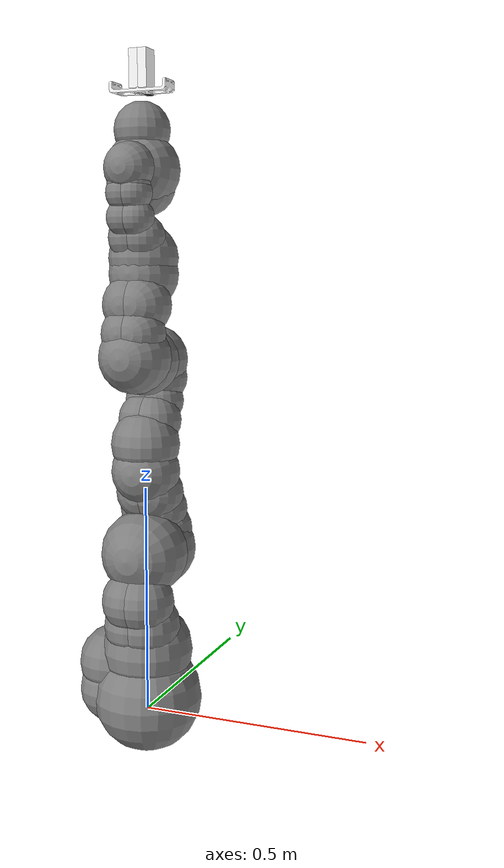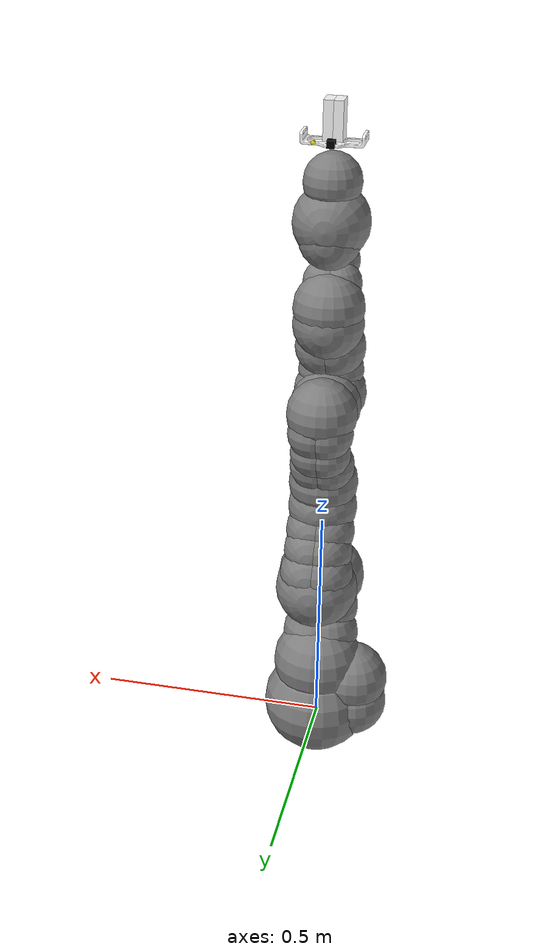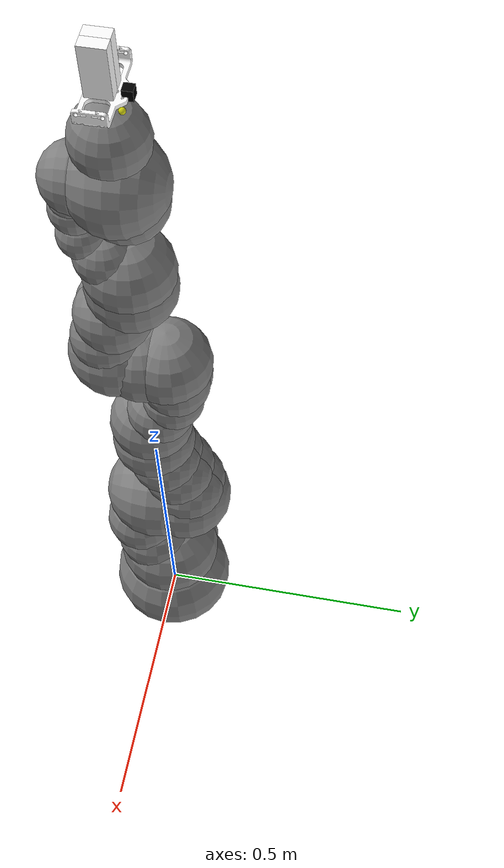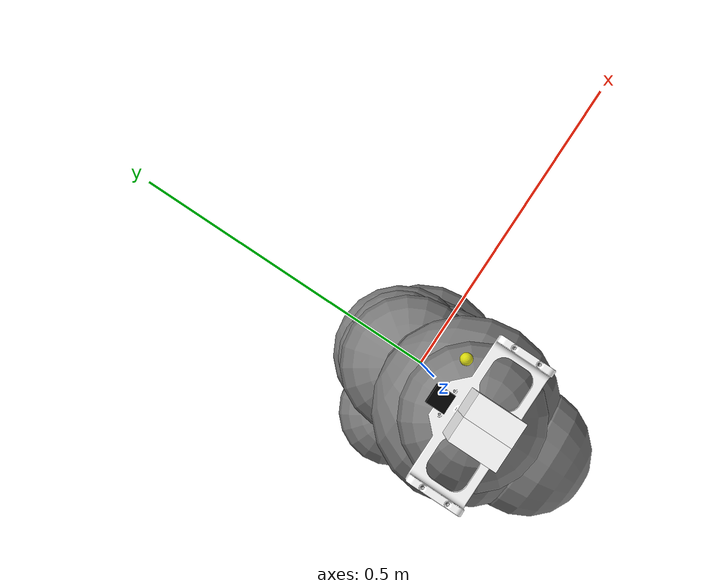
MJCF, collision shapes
<mujoco model="kuka_arm">
  <include file="gripper_hardware.xml"/>

  <default>
    <default class="iiwa">
      <material specular="0.5" shininess="0.25"/>
      <joint axis="0 0 1"/>
      <general gaintype="fixed" biastype="affine" gainprm="2000" biasprm="0 -2000 -200"/>
      <default class="joint1">
        <joint range="-2.96706 2.96706"/>
        <general ctrlrange="-2.96706 2.96706"/>
        <default class="joint2">
          <joint range="-2.0944 2.0944"/>
          <general ctrlrange="-2.0944 2.0944"/>
        </default>
      </default>
      <default class="joint3">
        <joint range="-3.05433 3.05433"/>
        <general ctrlrange="-3.05433 3.05433"/>
      </default>
      <default class="visual">
        <geom type="mesh" contype="0" conaffinity="0" group="2" material="gray"/>
      </default>
      <default class="collision">
        <geom group="3"/>
      </default>
      <site size="0.001" rgba="1 0 0 1" group="4"/>
    </default>
  </default>

  <asset>
    <material class="iiwa" name="gray" rgba="0.4 0.4 0.4 1"/>
    <material class="iiwa" name="light_gray" rgba="0.6 0.6 0.6 1"/>
    <material class="iiwa" name="black" rgba="0 0 0 1"/>
    <material class="iiwa" name="orange" rgba="1 0.423529 0.0392157 1"/>

    <mesh file="link_0.obj"/>
    <mesh file="link_1.obj"/>
    <mesh file="link_2_orange.obj"/>
    <mesh file="link_2_grey.obj"/>
    <mesh file="link_3.obj"/>
    <mesh file="band.obj"/>
    <mesh file="kuka.obj"/>
    <mesh file="link_4_orange.obj"/>
    <mesh file="link_4_grey.obj"/>
    <mesh file="link_5.obj"/>
    <mesh file="link_6_orange.obj"/>
    <mesh file="link_6_grey.obj"/>
    <mesh file="link_7.obj"/>
  </asset>

  <worldbody>
    <!-- Kuka iiwa 14 Robot Base -->
    <body name="base" childclass="iiwa">
      <inertial mass="5" pos="-0.1 0 0.07" diaginertia="0.05 0.06 0.03"/>
      <geom class="visual" mesh="link_0"/>
      <geom class="collision" size="0.12" pos="0 0 0.03"/>
      <geom class="collision" size="0.08" pos="-0.08 0 0.103"/>
      <geom class="collision" size="0.08" pos="-0.08 0 0.04"/>
      <geom class="collision" size="0.1" pos="0 0 0.14"/>
      <body name="link1" pos="0 0 0.1575">
        <inertial mass="5.76" pos="0 -0.03 0.12" diaginertia="0.0333 0.033 0.0123"/>
        <joint name="joint1" class="joint1"/>
        <geom class="visual" mesh="link_1"/>
        <geom class="collision" size="0.08" pos="0 0 -0.0005"/>
        <geom class="collision" size="0.075" pos="0.01 -0.025 0.0425"/>
        <geom class="collision" size="0.075" pos="-0.01 -0.025 0.0425"/>
        <geom class="collision" size="0.07" pos="0.01 -0.045 0.1025"/>
        <geom class="collision" size="0.07" pos="-0.01 -0.045 0.1025"/>
        <body name="link2" pos="0 0 0.2025" quat="0 0 1 1">
          <inertial mass="6.35" pos="0.0003 0.059 0.042" diaginertia="0.0305 0.0304 0.011" quat="0 0 1 1"/>
          <joint name="joint2" class="joint2"/>
          <geom class="visual" material="orange" mesh="link_2_orange"/>
          <geom class="visual" mesh="link_2_grey"/>
          <geom class="collision" size="0.095" pos="0 0 -0.01"/>
          <geom class="collision" size="0.09" pos="0 0 0.045"/>
          <geom class="collision" size="0.07" pos="-0.01 0.04 0.054"/>
          <geom class="collision" size="0.065" pos="-0.01 0.09 0.04"/>
          <geom class="collision" size="0.065" pos="-0.01 0.13 0.02"/>
          <geom class="collision" size="0.07" pos="0.01 0.04 0.054"/>
          <geom class="collision" size="0.065" pos="0.01 0.09 0.04"/>
          <geom class="collision" size="0.065" pos="0.01 0.13 0.02"/>
          <geom class="collision" size="0.075" pos="0 0.18 0"/>
          <body name="link3" pos="0 0.2045 0" quat="0 0 1 1">
            <inertial mass="3.5" pos="0 0.03 0.13" diaginertia="0.025 0.0238 0.0076"/>
            <joint name="joint3" class="joint1"/>
            <geom class="visual" mesh="link_3"/>
            <geom class="visual" material="light_gray" mesh="band"/>
            <geom class="visual" material="black" mesh="kuka"/>
            <geom class="collision" size="0.075" pos="0 0 0.0355"/>
            <geom class="collision" size="0.06" pos="0.01 0.023 0.0855"/>
            <geom class="collision" size="0.055" pos="0.01 0.048 0.1255"/>
            <geom class="collision" size="0.06" pos="0.01 0.056 0.1755"/>
            <geom class="collision" size="0.06" pos="-0.01 0.023 0.0855"/>
            <geom class="collision" size="0.055" pos="-0.01 0.048 0.1255"/>
            <geom class="collision" size="0.06" pos="-0.01 0.056 0.1755"/>
            <geom class="collision" size="0.075" pos="0 0.045 0.2155"/>
            <geom class="collision" size="0.075" pos="0 0 0.2155"/>
            <body name="link4" pos="0 0 0.2155" quat="1 1 0 0">
              <inertial mass="3.5" pos="0 0.067 0.034" diaginertia="0.017 0.0164 0.006" quat="1 1 0 0"/>
              <joint name="joint4" class="joint2"/>
              <geom class="visual" material="orange" mesh="link_4_orange"/>
              <geom class="visual" mesh="link_4_grey"/>
              <geom class="collision" size="0.078" pos="0 0.01 0.046"/>
              <geom class="collision" size="0.06" pos="0.01 0.06 0.052"/>
              <geom class="collision" size="0.065" pos="0.01 0.12 0.034"/>
              <geom class="collision" size="0.06" pos="-0.01 0.06 0.052"/>
              <geom class="collision" size="0.065" pos="-0.01 0.12 0.034"/>
              <geom class="collision" size="0.075" pos="0 0.184 0"/>
              <body name="link5" pos="0 0.1845 0" quat="0 0 1 1">
                <inertial mass="3.5" pos="0.0001 0.021 0.076" diaginertia="0.01 0.0087 0.00449"/>
                <joint name="joint5" class="joint1"/>
                <geom class="visual" mesh="link_5"/>
                <geom class="visual" material="light_gray" mesh="band"/>
                <geom class="visual" material="black" mesh="kuka"/>
                <geom class="collision" size="0.075" pos="0 0 0.0335"/>
                <geom class="collision" size="0.05" pos="-0.012 0.031 0.0755"/>
                <geom class="collision" size="0.05" pos="0.012 0.031 0.0755"/>
                <geom class="collision" size="0.04" pos="-0.012 0.06 0.1155"/>
                <geom class="collision" size="0.04" pos="0.012 0.06 0.1155"/>
                <geom class="collision" size="0.04" pos="-0.01 0.065 0.1655"/>
                <geom class="collision" size="0.04" pos="0.01 0.065 0.1655"/>
                <geom class="collision" size="0.035" pos="-0.012 0.065 0.1855"/>
                <geom class="collision" size="0.035" pos="0.012 0.065 0.1855"/>
                <body name="link6" pos="0 0 0.2155" quat="1 1 0 0">
                  <inertial mass="1.8" pos="0 0.0006 0.0004" diaginertia="0.0049 0.0047 0.0036" quat="1 1 0 0"/>
                  <joint name="joint6" class="joint2"/>
                  <geom class="visual" material="orange" mesh="link_6_orange"/>
                  <geom class="visual" mesh="link_6_grey"/>
                  <geom class="collision" size="0.055" pos="0 0 -0.059"/>
                  <geom class="collision" size="0.065" pos="0 -0.03 0.011"/>
                  <geom class="collision" size="0.08"/>
                  <body name="link7" pos="0 0.081 0" quat="0 0 1 1">
                    <inertial mass="1.2" pos="0 0 0.02" diaginertia="0.001 0.001 0.001"/>
                    <joint name="joint7" class="joint3"/>
                    <geom class="visual" mesh="link_7"/>
                    <geom class="collision" size="0.06" pos="0 0 0.001"/>
                    <site pos="0 0 0.045" name="attachment_site"/>

                    <include file="gripper_body.xml"/>
                  </body>
                </body>
              </body>
            </body>
          </body>
        </body>
      </body>
    </body>
  </worldbody>

  <actuator>
    <general name="actuator1" joint="joint1" class="joint1"/>
    <general name="actuator2" joint="joint2" class="joint2"/>
    <general name="actuator3" joint="joint3" class="joint1"/>
    <general name="actuator4" joint="joint4" class="joint2"/>
    <general name="actuator5" joint="joint5" class="joint1"/>
    <general name="actuator6" joint="joint6" class="joint2"/>
    <general name="actuator7" joint="joint7" class="joint3"/>
  </actuator>

  <contact>
    <exclude body1="base" body2="link1"/>
    <exclude body1="base" body2="link2"/>
    <exclude body1="base" body2="link3"/>
    <exclude body1="link1" body2="link3"/>
    <exclude body1="link3" body2="link5"/>
    <exclude body1="link4" body2="link7"/>
    <exclude body1="link5" body2="link7"/>
  </contact>
</mujoco>

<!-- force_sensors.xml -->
<mujoco model="force_sensors">
  <sensor>
    <!-- Contact pressure (touch) sensors: 50N max force cutoff, 0.01N noise -->
    <touch name="left_pressure" site="left_force_site" cutoff="50.0" noise="0.01"/>
    <touch name="right_pressure" site="right_force_site" cutoff="50.0" noise="0.01"/>

    <!-- 3D load-cell force sensors: 200N max force cutoff, 0.05N noise -->
    <force name="left_finger_force" site="left_force_site" cutoff="200.0" noise="0.05"/>
    <force name="right_finger_force" site="right_force_site" cutoff="200.0" noise="0.05"/>
  </sensor>
</mujoco>

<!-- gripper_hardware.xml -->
<mujoco model="gripper_hardware">
  <default>
    <default class="gripper">
      <geom friction="1 0.005 0.0001" margin="0.001" condim="3"/>
      <joint damping="0.05" armature="0.001" frictionloss="0.005"/>
    </default>
  </default>

  <asset>
    <mesh name="mesh_01" file="01_Bearing_676_10x6x3_MR106______________________1.stl"/>
    <mesh name="mesh_02" file="02_DIN_912_M3x50_______1.stl"/>
    <mesh name="mesh_03" file="03_GC2093_2MP_USB_Camera_Module_IMX335_5MP_USB_Camera________________3.stl"/>
    <mesh name="mesh_04" file="04_GC2093_2MP_USB_Camera_Module_IMX335_5MP_USB_Camera__________________1.stl"/>
    <mesh name="mesh_05" file="05_LM6UU__LM6UU_stp_1.stl"/>
    <mesh name="mesh_06" file="06_Main_Wheel_STS3215_Servo__________________________________M31.stl"/>
    <mesh name="mesh_07" file="07_RB9_01_060_011_Main_frame_125_follower______________________7.stl"/>
    <mesh name="mesh_08" file="08_RB9_01_060_021_Clamp____________17.stl"/>
    <mesh name="mesh_09" file="09_RB9_01_060_030_Gear_rack_long________________2.stl"/>
    <mesh name="mesh_10" file="10_RB9_01_060_040_Gear_for_gripper_0_5m_26z__________________________________M32.stl"/>
    <mesh name="mesh_11" file="11_RB9_01_060_071_Camera_holder_follower___camera_______10.stl"/>
    <mesh name="mesh_12" file="12_Rod_d6_125__________________1.stl"/>
    <mesh name="mesh_13" file="13_SG_ZIJI_15_STS3215_Servo__NONE.stl"/>
    <mesh name="mesh_14" file="14_XG_ZIJI_16_STS3215_Servo__NONE.stl"/>
    <mesh name="mesh_15" file="15_ZK_122_STS3215_Servo________________2.stl"/>
    <mesh name="mesh_16" file="16_countersunk_flat_head_cross_recess_screw_din_DIN_EN_ISO_7046_1___M2_x_8___Z___8N.stl"/>
    <mesh name="mesh_17" file="17_hex_nut_style_1_gradeab_din_Hexagon_Nut_ISO_4032___M2___D___N__EndChamfer.stl"/>
    <mesh name="mesh_18" file="18_hex_nut_style_1_gradeab_din_Hexagon_Nut_ISO_4032___M3___D___N__EndChamfer.stl"/>
    <mesh name="mesh_19" file="19_pan_head_cross_recess_screw_din_DIN_EN_ISO_7045___M3_x_4___Z___4N__RecessCore.stl"/>
    <mesh name="mesh_20" file="20_socket_countersunk_head_screw_din_DIN_7991___M3_x_20_____20N__Hex.stl"/>
    <mesh name="mesh_21" file="21_socket_countersunk_head_screw_din_DIN_7991___M3_x_8_____8N__Hex.stl"/>
    <mesh name="mesh_22" file="22_socket_countersunk_head_screw_din_DIN_7991___M4_x_8_____8N__Hex.stl"/>
    <mesh name="mesh_23" file="23_socket_head_cap_screw_din_DIN_912_M2_x_8_____8N__Hex.stl"/>
  </asset>

  <equality>
    <joint name="eq_rack_right" joint1="right_slide" joint2="motor_joint" polycoef="0 0.0065 0 0 0" solref="0.002 1" solimp="0.95 0.99 0.0002"/>
    <joint name="eq_rack_left" joint1="left_slide" joint2="motor_joint" polycoef="0 -0.0065 0 0 0" solref="0.002 1" solimp="0.95 0.99 0.0002"/>
  </equality>

  <actuator>
    <position name="motor_pos_ctrl" joint="motor_joint" kp="5" ctrlrange="-12.566 12.566" forcelimited="true" forcerange="-0.92 0.92"/>
  </actuator>

  <contact>
    <pair geom1="left_finger_collision" geom2="right_finger_collision" condim="3" margin="0.001" solref="0.002 1" solimp="0.95 0.99 0.0002"/>
  </contact>

  <!-- External force sensors XML included directly into hardware configuration -->
  <include file="force_sensors.xml"/>
</mujoco>

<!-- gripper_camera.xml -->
<mujoco model="gripper_camera">
  <!-- Optical parameters: position relative to mounting body, vertical field of view (fovy), and view direction vector -->
  <camera name="gripper_camera" pos="0 0.035 0.02" fovy="60" zaxis="0 0 -1"/>
</mujoco>

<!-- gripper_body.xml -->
<mujoco model="gripper_body_fragment">
  <body name="gripper_base" pos="0 0 0.085" childclass="gripper">
    <!-- Grasp site (TCP) -->
    <site name="grasp_site" type="sphere" pos="0 0 0.05" size="0.004" rgba="0 1 0 1"/>

    <!-- Independent Camera Included Inside Body Frame -->
    <include file="gripper_camera.xml"/>
    <geom name="camera_visual_box" type="box" pos="0 0.035 0" size="0.008 0.008 0.008" rgba="0 0 0 1" contype="0" conaffinity="0"/>

    <!-- Ultrasonic Target Site -->
    <site name="ultrasonic_site" type="sphere" pos="0.035 0.035 0.00" size="0.005" rgba="1 1 0 0.8"/>

    <!-- Fixed Geoms -->
    <geom name="fixed_04" type="mesh" mesh="mesh_16" pos="0.01025 0.0083 -0.0039" quat="0.707103 0.00168 0.707106 -0.00168" rgba="0.77 0.75 0.73 1" contype="0" conaffinity="0"/>
    <geom name="fixed_05" type="mesh" mesh="mesh_16" pos="0.01025 0.029 -0.0039" quat="0.707103 0.00168 0.707106 -0.00168" rgba="0.77 0.75 0.73 1" contype="0" conaffinity="0"/>
    <geom name="fixed_07" type="mesh" mesh="mesh_16" pos="-0.0102521 0.00830208 -0.042" quat="-0.505277 0.494666 0.505279 0.494664" rgba="0.77 0.75 0.73 1" contype="0" conaffinity="0"/>
    <geom name="fixed_26" type="mesh" mesh="mesh_16" pos="-0.0102521 0.0327521 -0.042" quat="-0.505277 0.494666 0.505279 0.494664" rgba="0.77 0.75 0.73 1" contype="0" conaffinity="0"/>
    <geom name="fixed_28" type="mesh" mesh="mesh_16" pos="0.0102479 0.00830208 -0.042" quat="-0.505277 0.494666 0.505279 0.494664" rgba="0.77 0.75 0.73 1" contype="0" conaffinity="0"/>
    <geom name="fixed_29" type="mesh" mesh="mesh_16" pos="-0.01025 0.029 -0.0039" quat="0.707103 0.00168 0.707106 -0.00168" rgba="0.77 0.75 0.73 1" contype="0" conaffinity="0"/>
    <geom name="fixed_32" type="mesh" mesh="mesh_16" pos="0.0102479 0.0327521 -0.042" quat="-0.505277 0.494666 0.505279 0.494664" rgba="0.77 0.75 0.73 1" contype="0" conaffinity="0"/>
    <geom name="fixed_53" type="mesh" mesh="mesh_16" pos="-0.01025 0.0083 -0.0039" quat="0.707103 0.00168 0.707106 -0.00168" rgba="0.77 0.75 0.73 1" contype="0" conaffinity="0"/>
    <geom name="fixed_14" type="mesh" mesh="mesh_22" pos="0 0.018 0.0038" quat="-0.199533 0.678372 -0.199534 -0.678369" rgba="0.77 0.75 0.73 1" contype="0" conaffinity="0"/>
    <geom name="fixed_55" type="mesh" mesh="mesh_22" pos="0 -0.018 0.0038" quat="0.678369 0.199533 0.678372 -0.199532" rgba="0.77 0.75 0.73 1" contype="0" conaffinity="0"/>
    <geom name="fixed_41" type="mesh" mesh="mesh_07" pos="0 0 0" quat="1 0 0 0" rgba="1 1 1 1" contype="1" conaffinity="1"/>
    <geom name="fixed_19" type="mesh" mesh="mesh_12" pos="0.0005 -0.0175 0.011" quat="0.0904077 0.995905 0 0" rgba="0.77 0.75 0.73 1" contype="0" conaffinity="0"/>
    <geom name="fixed_38" type="mesh" mesh="mesh_12" pos="0.0005 0.0175 0.011" quat="0.995905 0.0904059 0 0" rgba="0.77 0.75 0.73 1" contype="0" conaffinity="0"/>
    <geom name="fixed_01" type="mesh" mesh="mesh_01" pos="0 0.018 0.001" quat="-0.156375 -0.156375 0.6896 0.689598" rgba="0.77 0.77 0.81 1" contype="0" conaffinity="0"/>
    <geom name="fixed_02" type="mesh" mesh="mesh_17" pos="0.0169979 0.0520963 -0.0340359" quat="0.965168 0.258616 -0.0102478 0.0382454" rgba="0.77 0.75 0.73 1" contype="0" conaffinity="0"/>
    <geom name="fixed_06" type="mesh" mesh="mesh_20" pos="-0.061 0.011 0.0162" quat="0.707103 0.0017334 0.707106 -0.00173339" rgba="0.77 0.75 0.73 1" contype="0" conaffinity="0"/>
    <geom name="fixed_08" type="mesh" mesh="mesh_18" pos="0.061 -0.011 -0.0024" quat="0 1 0 0" rgba="0.77 0.75 0.73 1" contype="0" conaffinity="0"/>
    <geom name="fixed_09" type="mesh" mesh="mesh_18" pos="-0.061 0.011 0" quat="0 0 0 1" rgba="0.77 0.75 0.73 1" contype="0" conaffinity="0"/>
    <geom name="fixed_11" type="mesh" mesh="mesh_23" pos="0.0169979 0.0782912 -0.0114067" quat="0.668835 0.229476 0.693967 0.135684" rgba="0.77 0.75 0.73 1" contype="0" conaffinity="0"/>
    <geom name="fixed_12" type="mesh" mesh="mesh_20" pos="0.061 0.011 0.0162" quat="0.707103 -0.0017334 0.707106 0.00173339" rgba="0.77 0.75 0.73 1" contype="0" conaffinity="0"/>
    <geom name="fixed_13" type="mesh" mesh="mesh_18" pos="-0.061 -0.011 0" quat="0 0 0 1" rgba="0.77 0.75 0.73 1" contype="0" conaffinity="0"/>
    <geom name="fixed_15" type="mesh" mesh="mesh_02" pos="0.06 -0.02 -0.0045" quat="0 0 0.516887 0.856054" rgba="0.65 0.61 0.58 1" contype="0" conaffinity="0"/>
    <geom name="fixed_16" type="mesh" mesh="mesh_17" pos="-0.0170021 0.0815412 -0.0170359" quat="0.965168 0.258616 -0.0102478 0.0382454" rgba="0.77 0.75 0.73 1" contype="0" conaffinity="0"/>
    <geom name="fixed_17" type="mesh" mesh="mesh_02" pos="0.06 0.02 -0.0045" quat="0 0 0.856053 0.516888" rgba="0.65 0.61 0.58 1" contype="0" conaffinity="0"/>
    <geom name="fixed_21" type="mesh" mesh="mesh_03" pos="0 0.0653187 -0.0229378" quat="0.866025 -0.5 0 0" rgba="0.43 0.47 0.5 1" contype="0" conaffinity="0"/>
    <geom name="fixed_22" type="mesh" mesh="mesh_04" pos="0 0.0653187 -0.0229378" quat="0.866025 -0.5 0 0" rgba="0.99 0.87 0.76 1" contype="0" conaffinity="0"/>
    <geom name="fixed_24" type="mesh" mesh="mesh_20" pos="-0.061 -0.011 0.0162" quat="0.707105 0.000774842 0.707108 -0.000774839" rgba="0.77 0.75 0.73 1" contype="0" conaffinity="0"/>
    <geom name="fixed_25" type="mesh" mesh="mesh_18" pos="0.061 0.011 -0.0024" quat="0 1 0 0" rgba="0.77 0.75 0.73 1" contype="0" conaffinity="0"/>
    <geom name="fixed_31" type="mesh" mesh="mesh_01" pos="0 -0.018 0.001" quat="0.689598 0.6896 0.156376 0.156375" rgba="0.77 0.77 0.81 1" contype="0" conaffinity="0"/>
    <geom name="fixed_33" type="mesh" mesh="mesh_23" pos="-0.0170021 0.0488463 -0.0284067" quat="0.668835 0.229476 0.693967 0.135684" rgba="0.77 0.75 0.73 1" contype="0" conaffinity="0"/>
    <geom name="fixed_39" type="mesh" mesh="mesh_17" pos="-0.0170021 0.0520963 -0.0340359" quat="0.965168 0.258616 -0.0102478 0.0382454" rgba="0.77 0.75 0.73 1" contype="0" conaffinity="0"/>
    <geom name="fixed_40" type="mesh" mesh="mesh_11" pos="0 0.0173021 -0.042" quat="0.707105 0 0.707108 0" rgba="1 1 1 1" contype="0" conaffinity="0"/>
    <geom name="fixed_42" type="mesh" mesh="mesh_02" pos="-0.06 -0.02 -0.0045" quat="0.516888 0.856053 0 0" rgba="0.65 0.61 0.58 1" contype="0" conaffinity="0"/>
    <geom name="fixed_44" type="mesh" mesh="mesh_17" pos="0.0169979 0.0815412 -0.0170359" quat="0.965168 0.258616 -0.0102478 0.0382454" rgba="0.77 0.75 0.73 1" contype="0" conaffinity="0"/>
    <geom name="fixed_45" type="mesh" mesh="mesh_23" pos="-0.0170021 0.0782912 -0.0114067" quat="0.668835 0.229476 0.693967 0.135684" rgba="0.77 0.75 0.73 1" contype="0" conaffinity="0"/>
    <geom name="fixed_46" type="mesh" mesh="mesh_23" pos="0.0169979 0.0488463 -0.0284067" quat="0.668835 0.229476 0.693967 0.135684" rgba="0.77 0.75 0.73 1" contype="0" conaffinity="0"/>
    <geom name="fixed_47" type="mesh" mesh="mesh_13" pos="0 0.0255 -0.0134" quat="0.5 0.5 0.5 0.5" rgba="0.5 0.5 0.5 1" contype="0" conaffinity="0"/>
    <geom name="fixed_48" type="mesh" mesh="mesh_19" pos="0 0 -0.0014" quat="0.504237 -0.495726 0.504239 0.495724" rgba="0.77 0.75 0.73 1" contype="0" conaffinity="0"/>
    <geom name="fixed_49" type="mesh" mesh="mesh_15" pos="0 0.0255038 -0.0134" quat="0.5 0.5 0.5 0.5" rgba="0.5 0.5 0.5 1" contype="0" conaffinity="0"/>
    <geom name="fixed_50" type="mesh" mesh="mesh_14" pos="0 0.0255021 -0.0134" quat="0.5 0.5 0.5 0.5" rgba="0.5 0.5 0.5 1" contype="0" conaffinity="0"/>
    <geom name="fixed_51" type="mesh" mesh="mesh_06" pos="0.01 0 -0.0308" quat="0 0 0.707108 0.707105" rgba="0.89 0.91 0.92 1" contype="0" conaffinity="0"/>
    <geom name="fixed_54" type="mesh" mesh="mesh_02" pos="-0.06 0.02 -0.0045" quat="0.856054 0.516887 0 0" rgba="0.65 0.61 0.58 1" contype="0" conaffinity="0"/>
    <geom name="fixed_56" type="mesh" mesh="mesh_20" pos="0.061 -0.011 0.0162" quat="0.707105 -0.000774842 0.707108 0.000774839" rgba="0.77 0.75 0.73 1" contype="0" conaffinity="0"/>

    <!-- Left Finger -->
    <body name="left_gripper" pos="0 0 0">
      <joint name="left_slide" type="slide" axis="1 0 0" range="-0.040 0.040"/>
      <inertial pos="0 0 0" quat="1 0 0 0" mass="0.0255" diaginertia="9.038e-6 4.326e-6 9.752e-6"/>

      <!-- Force Sensor Site -->
      <site name="left_force_site" type="box" pos="0 0 0.06" size="0.002 0.01 0.007" rgba="1 0 0 1"/>

      <geom name="left_finger" type="mesh" mesh="mesh_08" pos="-0.01 0 0.011" quat="0.5 0.5 0.5 0.5" rgba="0.5 1 0.5 1" contype="0" conaffinity="0"/>
      <geom name="left_finger_collision" type="box" pos="-0.010 0 0.04" size="0.010 0.02 0.04" contype="1" conaffinity="1" condim="3" friction="1 0.005 0.0001" solref="0.001 1" solimp="0.99 0.99 0.001" rgba="1 1 1 0"/>
      <geom name="left_rack" type="mesh" mesh="mesh_09" pos="-0.019 0.006 0.001" quat="-0.707105 0 0.707108 0" rgba="1 1 1 1" contype="0" conaffinity="0"/>
      <geom name="left_bearing_1" type="mesh" mesh="mesh_05" pos="-0.001 0.0175 0.011" quat="0.544097 0.451618 -0.451616 0.544099" rgba="0.79 0.81 0.93 1" contype="0" conaffinity="0"/>
      <geom name="left_bearing_2" type="mesh" mesh="mesh_05" pos="-0.001 -0.0175 0.011" quat="-0.451618 -0.544096 0.544099 -0.451615" rgba="0.79 0.81 0.93 1" contype="0" conaffinity="0"/>
      <geom name="left_screw_21_1" type="mesh" mesh="mesh_21" pos="-0.015 0.009 0.00045" quat="0.455844 0.540561 -0.455846 0.540559" rgba="0.77 0.75 0.73 1" contype="0" conaffinity="0"/>
      <geom name="left_screw_21_2" type="mesh" mesh="mesh_21" pos="-0.007 0.009 0.00045" quat="0.411412 0.575101 -0.411413 0.575099" rgba="0.77 0.75 0.73 1" contype="0" conaffinity="0"/>
    </body>

    <!-- Right Finger -->
    <body name="right_gripper" pos="0 0 0">
      <joint name="right_slide" type="slide" axis="1 0 0" range="-0.040 0.040"/>
      <inertial pos="0 0 0" quat="1 0 0 0" mass="0.0255" diaginertia="9.038e-6 4.326e-6 9.752e-6"/>

      <!-- Force Sensor Site -->
      <site name="right_force_site" type="box" pos="0 0 0.06" size="0.002 0.01 0.007" rgba="1 0 0 1"/>

      <geom name="right_finger" type="mesh" mesh="mesh_08" pos="0.01 0 0.011" quat="-0.5 -0.5 0.5 0.5" rgba="0.5 1 0.5 1" contype="0" conaffinity="0"/>
      <geom name="right_finger_collision" type="box" pos="0.010 0 0.04" size="0.010 0.02 0.04" contype="1" conaffinity="1" condim="3" friction="1 0.005 0.0001" solref="0.001 1" solimp="0.99 0.99 0.001" rgba="1 1 1 0"/>
      <geom name="right_rack" type="mesh" mesh="mesh_09" pos="0.019 -0.006 0.001" quat="0 0.707108 0 0.707105" rgba="1 1 1 1" contype="0" conaffinity="0"/>
      <geom name="right_bearing_1" type="mesh" mesh="mesh_05" pos="0.001 0.0175 0.011" quat="-0.451617 0.544097 0.544098 0.451617" rgba="0.79 0.81 0.93 1" contype="0" conaffinity="0"/>
      <geom name="right_bearing_2" type="mesh" mesh="mesh_05" pos="0.001 -0.0175 0.011" quat="-0.544097 0.451618 0.451616 0.544099" rgba="0.79 0.81 0.93 1" contype="0" conaffinity="0"/>
      <geom name="right_screw_21_1" type="mesh" mesh="mesh_21" pos="0.007 -0.009 0.00045" quat="-0.575099 0.411413 0.575101 0.411411" rgba="0.77 0.75 0.73 1" contype="0" conaffinity="0"/>
      <geom name="right_screw_21_2" type="mesh" mesh="mesh_21" pos="0.015 -0.009 0.00045" quat="-0.540558 0.455848 0.54056 0.455846" rgba="0.77 0.75 0.73 1" contype="0" conaffinity="0"/>
    </body>

    <!-- Motor Pinion -->
    <body name="motor_pinion" pos="0 0 0">
      <joint name="motor_joint" type="hinge" axis="0 0 1" range="-12.566 12.566" damping="0.05" frictionloss="0.005"/>
      <inertial pos="0 0 0" quat="1 0 0 0" mass="0.00136" diaginertia="3.357e-8 5.352e-8 3.357e-8"/>
      <geom name="pinion_visual" type="mesh" mesh="mesh_10" pos="0 0 0.0037" quat="-0.670864 0.670866 0.223473 -0.223472" rgba="0.5 0.5 0.5 1" contype="0" conaffinity="0"/>
    </body>
  </body>
</mujoco>
